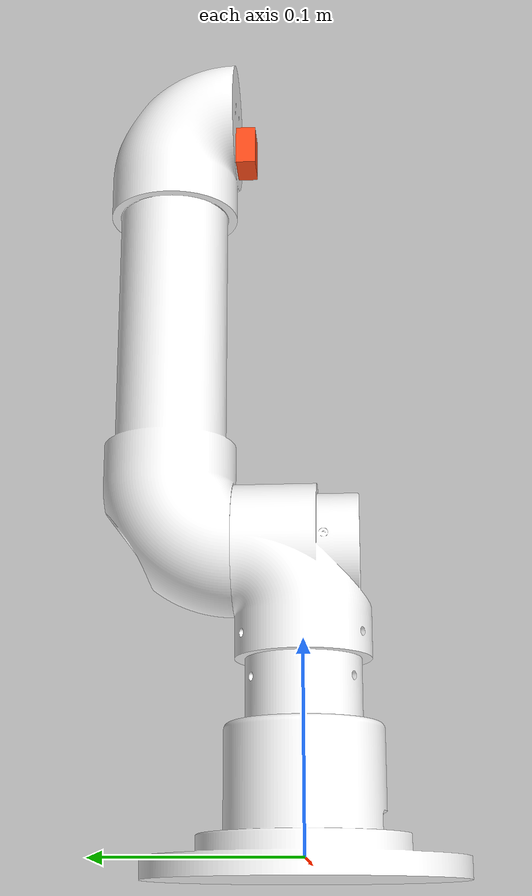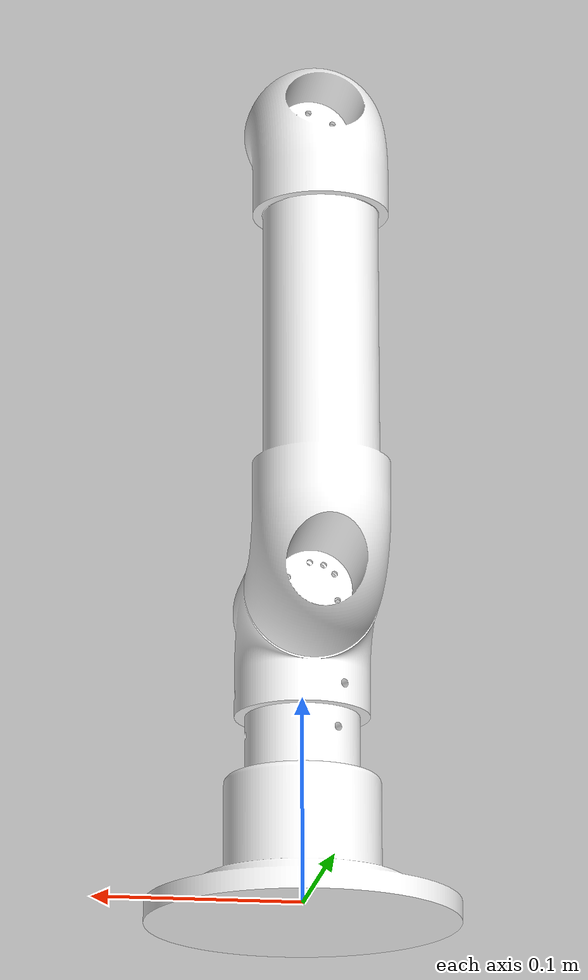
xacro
<?xml version="1.0"?>
<!-- Dual Motor Test URDF using FR Arm structure for 2 MyActuator RMD motors -->
<robot xmlns:xacro="http://www.ros.org/wiki/xacro" name="dual_motor_test">

    <!-- Include inertial macros from robot_description -->
    <xacro:include filename="$(find robot_description)/urdf/arm_only/inertial_macros.xacro"/>

    <!-- Arguments -->
    <xacro:arg name="can_interface" default="can0"/>
    <xacro:arg name="motor1_id" default="1"/>
    <xacro:arg name="motor2_id" default="2"/>

    <!-- Properties from robot_description -->
    <xacro:property name="meshes_file_direction" value="package://robot_description/meshes"/>
    <xacro:property name="actuator_height" value="0.061"/>
    <xacro:property name="actuator_diameter" value="0.065"/>
    <xacro:property name="actuator_radius" value="${actuator_diameter / 2}"/>
    <xacro:property name="actuator_mass" value="0.350"/>
    <xacro:property name="actuator_width" value="0.065"/>
    <xacro:property name="upperarm_width" value="0.065"/>
    <xacro:property name="upperarm_length" value="0.270"/>
    <xacro:property name="upperarm_mass" value="0.300"/>

    <!-- Motor properties -->
    <xacro:property name="torque_constant" value="0.32"/>
    <xacro:property name="max_velocity" value="4.19"/>   <!-- rad/s -->
    <xacro:property name="max_effort" value="1.5"/>      <!-- Nm -->

    <!-- Materials -->
    <material name="white">
        <color rgba="1 1 1 1" />
    </material>
    <material name="blue">
        <color rgba="0 0 1 1"/>
    </material>
    <material name="orange">
        <color rgba="1 0.3 0.1 1"/>
    </material>

    <!-- World link -->
    <link name="world"/>

    <!-- Base footprint -->
    <link name="base_footprint"/>

    <joint name="world_to_base_footprint" type="fixed">
        <parent link="world"/>
        <child link="base_footprint"/>
        <origin xyz="0 0 0" rpy="0 0 0"/>
    </joint>

    <joint name="base_link_fixed_joint" type="fixed">
        <parent link="base_footprint"/>
        <child link="base_link"/>
        <origin xyz="0 0 0" rpy="0 0 0"/>
    </joint>

    <link name="base_link"/>

    <!-- First actuator (fixed to base) -->
    <joint name="actuator1_to_base_link" type="fixed">
        <parent link="base_link"/>
        <child link="actuator1"/>
        <origin xyz="0 0 0" rpy="0 0 0"/>
    </joint>

    <link name="actuator1">
        <visual>
            <origin xyz="0 0 0" rpy="0 0 0"/>
            <geometry>
                <mesh filename="${meshes_file_direction}/actuator1.stl" scale="0.001 0.001 0.001"/>
            </geometry>
            <material name="white"/>
        </visual>

        <collision>
            <origin xyz="0 0 0" rpy="0 0 0"/>
            <geometry>
                <mesh filename="${meshes_file_direction}/actuator1.stl" scale="0.001 0.001 0.001"/>
            </geometry>
        </collision>

        <xacro:inertial_cylinder mass="${actuator_mass}" radius="${actuator_radius}"
                                 length="${actuator_height}">
            <origin xyz="0 0 ${actuator_height/2}" rpy="0 0 0"/>
        </xacro:inertial_cylinder>
    </link>

    <!-- First joint (joint1) - Z axis rotation -->
    <joint name="joint1" type="continuous">
        <parent link="actuator1"/>
        <child link="actuator2"/>
        <origin xyz="0 0 0.06" rpy="0 0 0"/>
        <axis xyz="0 0 1"/>
        <limit effort="${max_effort}" velocity="${max_velocity}"/>
        <dynamics damping="0.1"/>
    </joint>

    <link name="actuator2">
        <visual>
            <origin xyz="0 0 0" rpy="0 0 0"/>
            <geometry>
                <mesh filename="${meshes_file_direction}/actuator2.stl" scale="0.001 0.001 0.001"/>
            </geometry>
            <material name="white"/>
        </visual>
        <collision>
            <origin xyz="0 0 0" rpy="0 0 0"/>
            <geometry>
                <mesh filename="${meshes_file_direction}/actuator2.stl" scale="0.001 0.001 0.001"/>
            </geometry>
        </collision>
        <xacro:inertial_box mass="${actuator_mass}" x="${actuator_width}" y="${actuator_width}" z="${actuator_width}">
            <origin xyz="0 0 0" rpy="0 0 0"/>
        </xacro:inertial_box>
    </link>

    <!-- Second joint (joint2) - Y axis rotation -->
    <joint name="joint2" type="revolute">
        <parent link="actuator2"/>
        <child link="upperarm_link"/>
        <origin xyz="0 ${actuator_width/2} 0.0835" rpy="0 0 0"/>
        <axis xyz="0 1 0"/>
        <limit lower="-3.14" upper="3.14" effort="${max_effort}" velocity="${max_velocity}"/>
        <dynamics damping="0.1"/>
    </joint>

    <link name="upperarm_link">
        <visual>
            <origin xyz="0 0 0" rpy="0 0 0"/>
            <geometry>
                <mesh filename="${meshes_file_direction}/upperarm_link.stl" scale="0.001 0.001 0.001"/>
            </geometry>
            <material name="white"/>
        </visual>

        <collision>
            <origin xyz="0 0 0" rpy="0 0 0"/>
            <geometry>
                <mesh filename="${meshes_file_direction}/upperarm_link.stl" scale="0.001 0.001 0.001"/>
            </geometry>
        </collision>

        <xacro:inertial_box mass="${upperarm_mass}" x="${upperarm_width}" y="${upperarm_width}" z="${upperarm_length}">
            <origin xyz="0 0 ${(upperarm_length - upperarm_width)/2}" rpy="0 0 0"/>
        </xacro:inertial_box>
    </link>

    <!-- End effector for visualization -->
    <joint name="end_effector_joint" type="fixed">
        <parent link="upperarm_link"/>
        <child link="end_effector_link"/>
        <origin xyz="0 0 0.215" rpy="0 0 0"/>
    </joint>

    <link name="end_effector_link">
        <visual>
            <origin xyz="0 0 0" rpy="0 0 0"/>
            <geometry>
                <box size="0.02 0.02 0.02" />
            </geometry>
            <material name="orange"/>
        </visual>
    </link>

    <!-- ros2_control hardware interface for 2 motors -->
    <ros2_control name="dual_motor_hardware" type="system">
        <hardware>
            <plugin>myactuator_hardware/MultiMotorHardwareInterface</plugin>
            <param name="ifname">$(arg can_interface)</param>
            <param name="cycle_time">5</param>
            <param name="timeout">100</param>
        </hardware>

        <joint name="joint1">
            <param name="actuator_id">$(arg motor1_id)</param>
            <param name="torque_constant">${torque_constant}</param>
            <command_interface name="position"/>
            <command_interface name="velocity"/>
            <command_interface name="effort"/>
            <state_interface name="position">
                <param name="initial_value">0.0</param>
            </state_interface>
            <state_interface name="velocity"/>
            <state_interface name="effort"/>
        </joint>

        <joint name="joint2">
            <param name="actuator_id">$(arg motor2_id)</param>
            <param name="torque_constant">${torque_constant}</param>
            <command_interface name="position"/>
            <command_interface name="velocity"/>
            <command_interface name="effort"/>
            <state_interface name="position">
                <param name="initial_value">0.0</param>
            </state_interface>
            <state_interface name="velocity"/>
            <state_interface name="effort"/>
        </joint>
    </ros2_control>

</robot>
